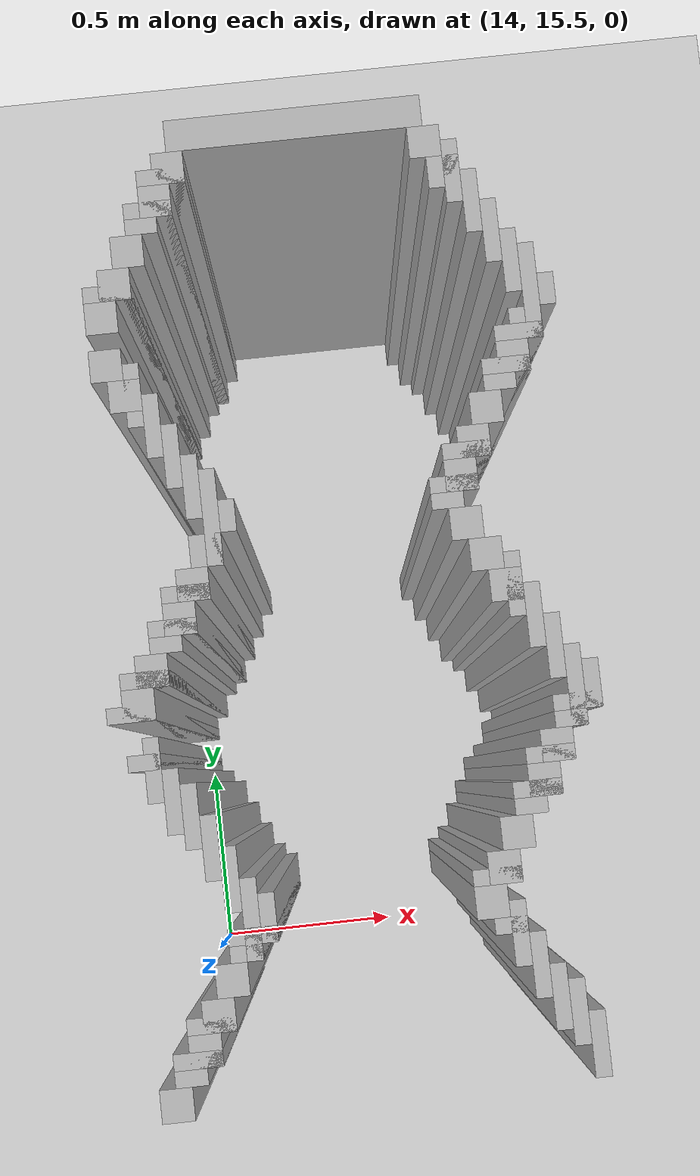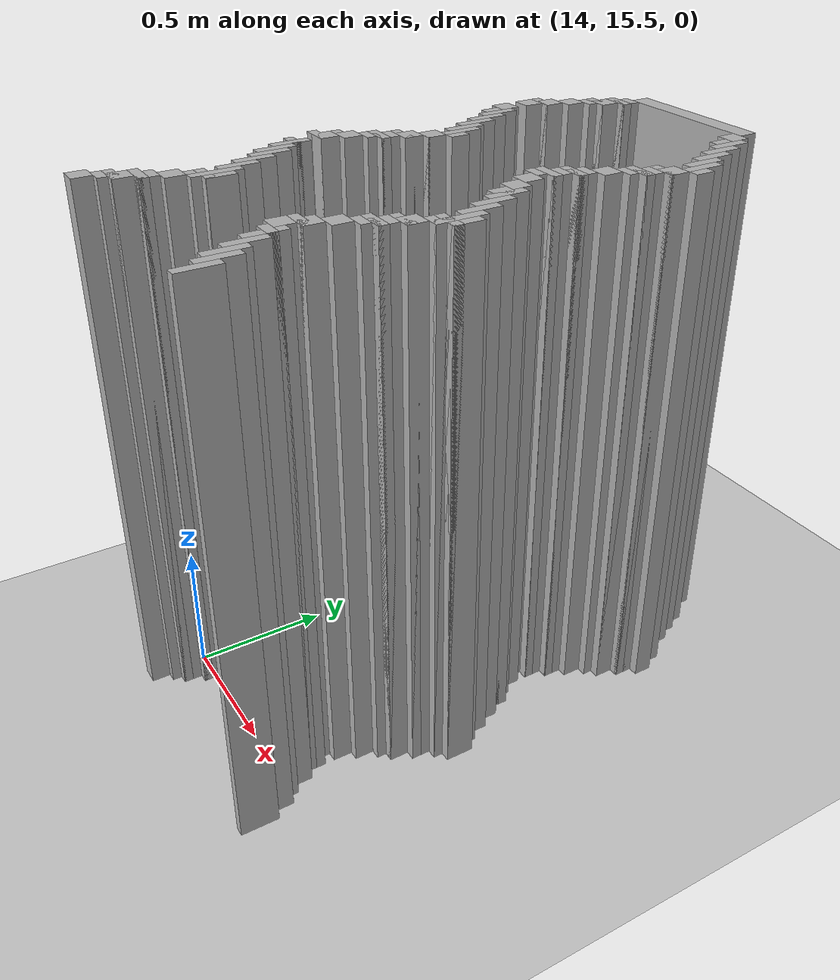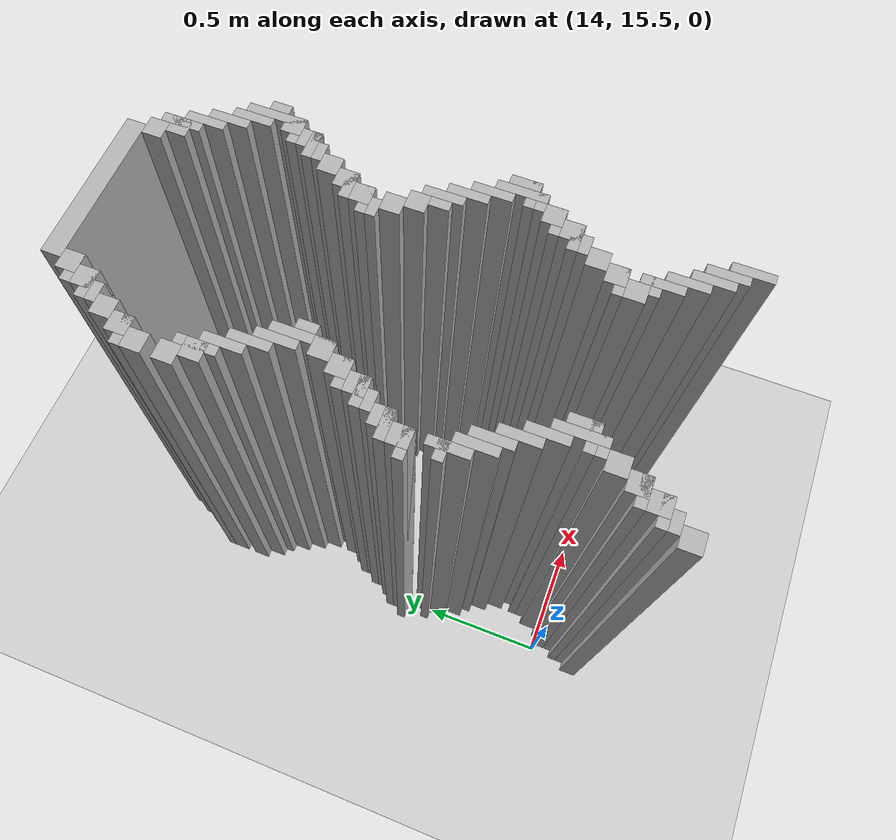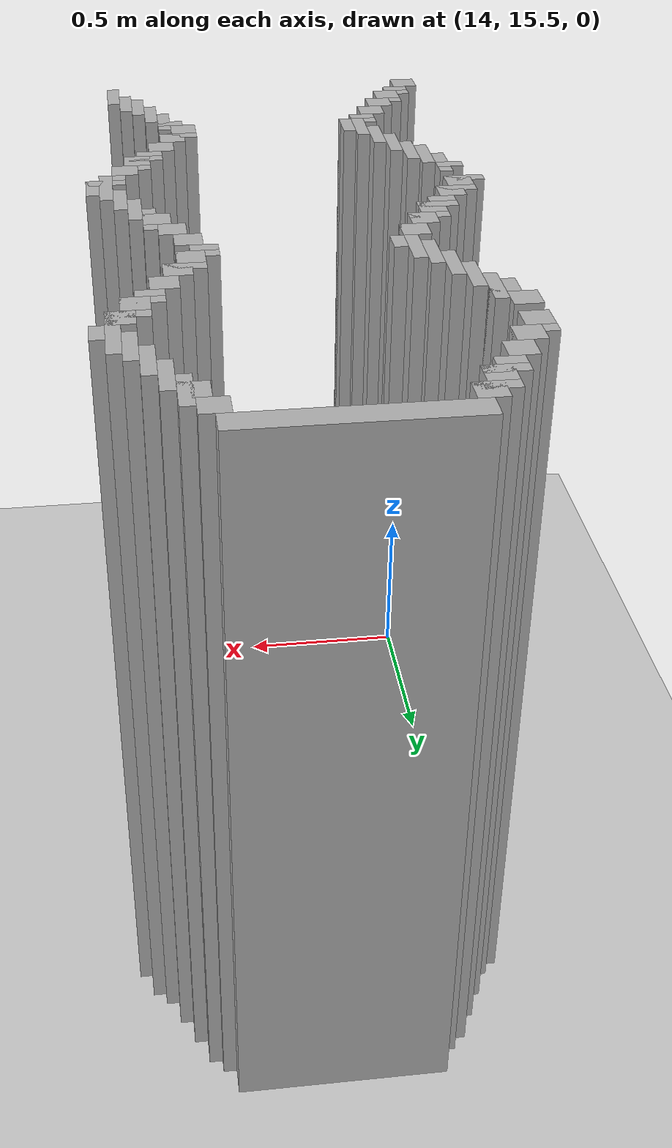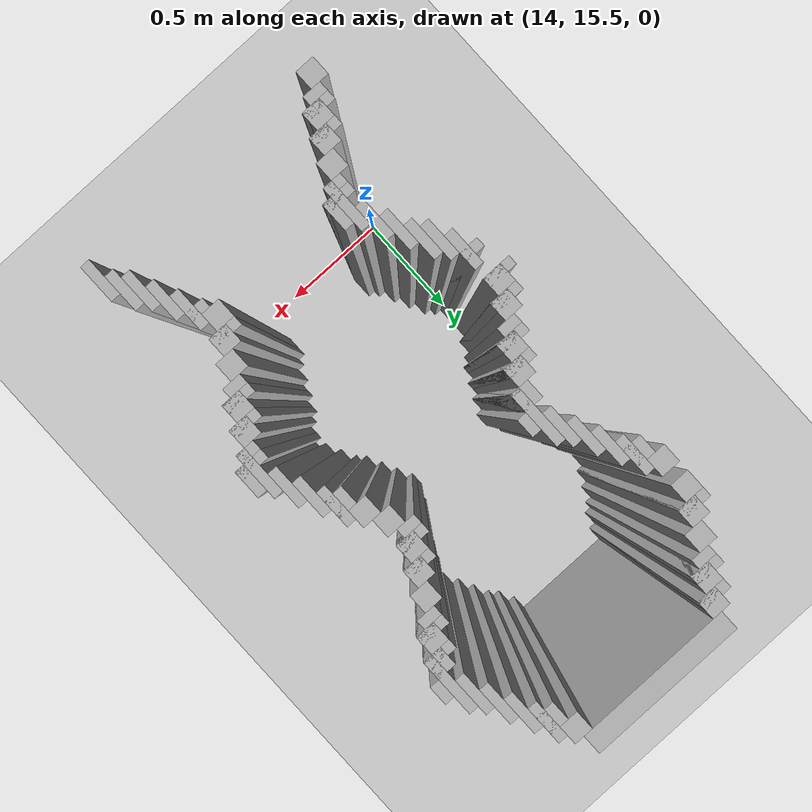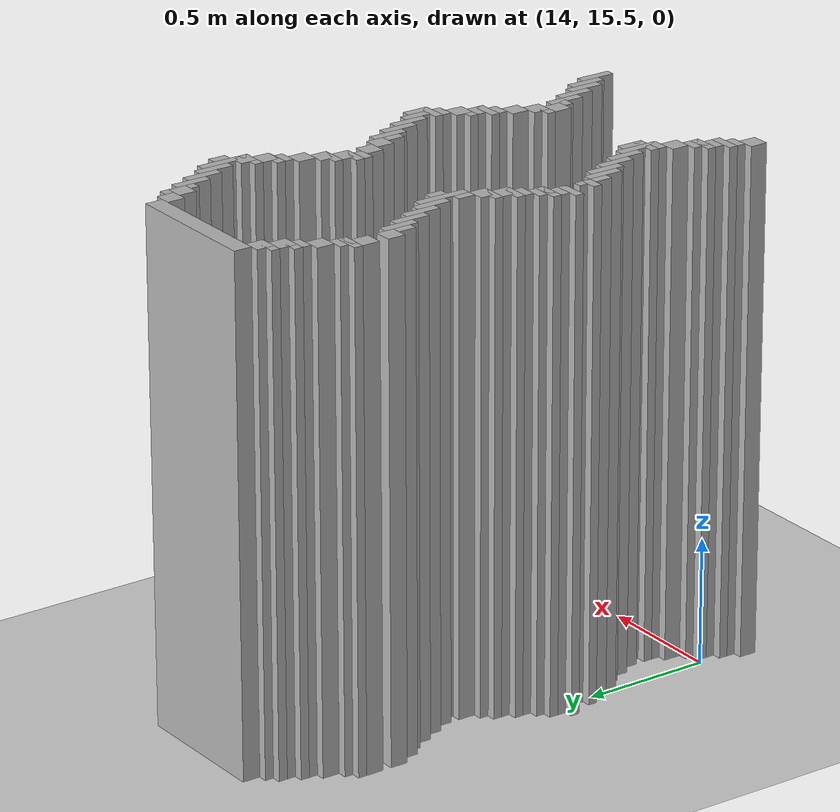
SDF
<sdf version="1.6">
 <world name="slam_world">
  <model name="ground_plane">
   <static>true</static>
   <link name="link">
    <collision name="collision">
     <geometry><plane><normal>0 0 1</normal><size>100 100</size></plane></geometry>
    </collision>
    <visual name="visual">
     <geometry><plane><normal>0 0 1</normal><size>100 100</size></plane></geometry>
     <material>
      <ambient>0.8 0.8 0.8 1</ambient>
      <diffuse>0.8 0.8 0.8 1</diffuse>
      <specular>0.8 0.8 0.8 1</specular>
     </material>
    </visual>
   </link>
  </model>
  <model name="wall_10">
   <static>true</static>
   <pose>14.443155452436194 17.366589327146173 1.0 0 0 0</pose>
   <link name="link">
    <collision name="collision">
     <geometry><box><size>0.5568445475638051 0.06960556844547564 2.0</size></box></geometry>
    </collision>
    <visual name="visual">
     <geometry><box><size>0.5568445475638051 0.06960556844547564 2.0</size></box></geometry>
     <material><ambient>0.5 0.5 0.5 1</ambient><diffuse>0.7 0.7 0.7 1</diffuse></material>
    </visual>
   </link>
  </model>
  <model name="wall_29">
   <static>true</static>
   <pose>14.164733178654291 17.296983758700694 1.0 0 0 0</pose>
   <link name="link">
    <collision name="collision">
     <geometry><box><size>0.06960556844547564 0.06960556844547564 2.0</size></box></geometry>
    </collision>
    <visual name="visual">
     <geometry><box><size>0.06960556844547564 0.06960556844547564 2.0</size></box></geometry>
     <material><ambient>0.5 0.5 0.5 1</ambient><diffuse>0.7 0.7 0.7 1</diffuse></material>
    </visual>
   </link>
  </model>
  <model name="wall_30">
   <static>true</static>
   <pose>14.721577726218097 17.296983758700694 1.0 0 0 0</pose>
   <link name="link">
    <collision name="collision">
     <geometry><box><size>0.06960556844547564 0.06960556844547564 2.0</size></box></geometry>
    </collision>
    <visual name="visual">
     <geometry><box><size>0.06960556844547564 0.06960556844547564 2.0</size></box></geometry>
     <material><ambient>0.5 0.5 0.5 1</ambient><diffuse>0.7 0.7 0.7 1</diffuse></material>
    </visual>
   </link>
  </model>
  <model name="wall_49">
   <static>true</static>
   <pose>14.147331786542923 17.279582366589327 1.0 0 0 0</pose>
   <link name="link">
    <collision name="collision">
     <geometry><box><size>0.10440835266821345 0.03480278422273782 2.0</size></box></geometry>
    </collision>
    <visual name="visual">
     <geometry><box><size>0.10440835266821345 0.03480278422273782 2.0</size></box></geometry>
     <material><ambient>0.5 0.5 0.5 1</ambient><diffuse>0.7 0.7 0.7 1</diffuse></material>
    </visual>
   </link>
  </model>
  <model name="wall_50">
   <static>true</static>
   <pose>14.773781902552203 17.22737819025522 1.0 0 0 0</pose>
   <link name="link">
    <collision name="collision">
     <geometry><box><size>0.03480278422273782 0.13921113689095127 2.0</size></box></geometry>
    </collision>
    <visual name="visual">
     <geometry><box><size>0.03480278422273782 0.13921113689095127 2.0</size></box></geometry>
     <material><ambient>0.5 0.5 0.5 1</ambient><diffuse>0.7 0.7 0.7 1</diffuse></material>
    </visual>
   </link>
  </model>
  <model name="wall_69">
   <static>true</static>
   <pose>14.129930394431554 17.22737819025522 1.0 0 0 0</pose>
   <link name="link">
    <collision name="collision">
     <geometry><box><size>0.06960556844547564 0.06960556844547564 2.0</size></box></geometry>
    </collision>
    <visual name="visual">
     <geometry><box><size>0.06960556844547564 0.06960556844547564 2.0</size></box></geometry>
     <material><ambient>0.5 0.5 0.5 1</ambient><diffuse>0.7 0.7 0.7 1</diffuse></material>
    </visual>
   </link>
  </model>
  <model name="wall_70">
   <static>true</static>
   <pose>14.756380510440835 17.22737819025522 1.0 0 0 0</pose>
   <link name="link">
    <collision name="collision">
     <geometry><box><size>0.06960556844547564 0.06960556844547564 2.0</size></box></geometry>
    </collision>
    <visual name="visual">
     <geometry><box><size>0.06960556844547564 0.06960556844547564 2.0</size></box></geometry>
     <material><ambient>0.5 0.5 0.5 1</ambient><diffuse>0.7 0.7 0.7 1</diffuse></material>
    </visual>
   </link>
  </model>
  <model name="wall_89">
   <static>true</static>
   <pose>14.112529002320185 17.209976798143853 1.0 0 0 0</pose>
   <link name="link">
    <collision name="collision">
     <geometry><box><size>0.10440835266821345 0.03480278422273782 2.0</size></box></geometry>
    </collision>
    <visual name="visual">
     <geometry><box><size>0.10440835266821345 0.03480278422273782 2.0</size></box></geometry>
     <material><ambient>0.5 0.5 0.5 1</ambient><diffuse>0.7 0.7 0.7 1</diffuse></material>
    </visual>
   </link>
  </model>
  <model name="wall_90">
   <static>true</static>
   <pose>14.80858468677494 17.157772621809745 1.0 0 0 0</pose>
   <link name="link">
    <collision name="collision">
     <geometry><box><size>0.03480278422273782 0.13921113689095127 2.0</size></box></geometry>
    </collision>
    <visual name="visual">
     <geometry><box><size>0.03480278422273782 0.13921113689095127 2.0</size></box></geometry>
     <material><ambient>0.5 0.5 0.5 1</ambient><diffuse>0.7 0.7 0.7 1</diffuse></material>
    </visual>
   </link>
  </model>
  <model name="wall_100">
   <static>true</static>
   <pose>14.095127610208817 17.17517401392111 1.0 0 0 0</pose>
   <link name="link">
    <collision name="collision">
     <geometry><box><size>0.06960556844547564 0.03480278422273782 2.0</size></box></geometry>
    </collision>
    <visual name="visual">
     <geometry><box><size>0.06960556844547564 0.03480278422273782 2.0</size></box></geometry>
     <material><ambient>0.5 0.5 0.5 1</ambient><diffuse>0.7 0.7 0.7 1</diffuse></material>
    </visual>
   </link>
  </model>
  <model name="wall_119">
   <static>true</static>
   <pose>14.06032482598608 17.122969837587007 1.0 0 0 0</pose>
   <link name="link">
    <collision name="collision">
     <geometry><box><size>0.06960556844547564 0.06960556844547564 2.0</size></box></geometry>
    </collision>
    <visual name="visual">
     <geometry><box><size>0.06960556844547564 0.06960556844547564 2.0</size></box></geometry>
     <material><ambient>0.5 0.5 0.5 1</ambient><diffuse>0.7 0.7 0.7 1</diffuse></material>
    </visual>
   </link>
  </model>
  <model name="wall_120">
   <static>true</static>
   <pose>14.84338747099768 17.08816705336427 1.0 0 0 0</pose>
   <link name="link">
    <collision name="collision">
     <geometry><box><size>0.03480278422273782 0.13921113689095127 2.0</size></box></geometry>
    </collision>
    <visual name="visual">
     <geometry><box><size>0.03480278422273782 0.13921113689095127 2.0</size></box></geometry>
     <material><ambient>0.5 0.5 0.5 1</ambient><diffuse>0.7 0.7 0.7 1</diffuse></material>
    </visual>
   </link>
  </model>
  <model name="wall_139">
   <static>true</static>
   <pose>14.02552204176334 17.053364269141532 1.0 0 0 0</pose>
   <link name="link">
    <collision name="collision">
     <geometry><box><size>0.06960556844547564 0.06960556844547564 2.0</size></box></geometry>
    </collision>
    <visual name="visual">
     <geometry><box><size>0.06960556844547564 0.06960556844547564 2.0</size></box></geometry>
     <material><ambient>0.5 0.5 0.5 1</ambient><diffuse>0.7 0.7 0.7 1</diffuse></material>
    </visual>
   </link>
  </model>
  <model name="wall_140">
   <static>true</static>
   <pose>14.878190255220417 17.01856148491879 1.0 0 0 0</pose>
   <link name="link">
    <collision name="collision">
     <geometry><box><size>0.03480278422273782 0.13921113689095127 2.0</size></box></geometry>
    </collision>
    <visual name="visual">
     <geometry><box><size>0.03480278422273782 0.13921113689095127 2.0</size></box></geometry>
     <material><ambient>0.5 0.5 0.5 1</ambient><diffuse>0.7 0.7 0.7 1</diffuse></material>
    </visual>
   </link>
  </model>
  <model name="wall_159">
   <static>true</static>
   <pose>14.008120649651971 17.035962877030162 1.0 0 0 0</pose>
   <link name="link">
    <collision name="collision">
     <geometry><box><size>0.10440835266821345 0.03480278422273782 2.0</size></box></geometry>
    </collision>
    <visual name="visual">
     <geometry><box><size>0.10440835266821345 0.03480278422273782 2.0</size></box></geometry>
     <material><ambient>0.5 0.5 0.5 1</ambient><diffuse>0.7 0.7 0.7 1</diffuse></material>
    </visual>
   </link>
  </model>
  <model name="wall_160">
   <static>true</static>
   <pose>14.912993039443155 16.948955916473317 1.0 0 0 0</pose>
   <link name="link">
    <collision name="collision">
     <geometry><box><size>0.03480278422273782 0.2088167053364269 2.0</size></box></geometry>
    </collision>
    <visual name="visual">
     <geometry><box><size>0.03480278422273782 0.2088167053364269 2.0</size></box></geometry>
     <material><ambient>0.5 0.5 0.5 1</ambient><diffuse>0.7 0.7 0.7 1</diffuse></material>
    </visual>
   </link>
  </model>
  <model name="wall_170">
   <static>true</static>
   <pose>13.990719257540603 16.983758700696054 1.0 0 0 0</pose>
   <link name="link">
    <collision name="collision">
     <geometry><box><size>0.06960556844547564 0.06960556844547564 2.0</size></box></geometry>
    </collision>
    <visual name="visual">
     <geometry><box><size>0.06960556844547564 0.06960556844547564 2.0</size></box></geometry>
     <material><ambient>0.5 0.5 0.5 1</ambient><diffuse>0.7 0.7 0.7 1</diffuse></material>
    </visual>
   </link>
  </model>
  <model name="wall_181">
   <static>true</static>
   <pose>14.947795823665892 16.948955916473317 1.0 0 0 0</pose>
   <link name="link">
    <collision name="collision">
     <geometry><box><size>0.03480278422273782 0.06960556844547564 2.0</size></box></geometry>
    </collision>
    <visual name="visual">
     <geometry><box><size>0.03480278422273782 0.06960556844547564 2.0</size></box></geometry>
     <material><ambient>0.5 0.5 0.5 1</ambient><diffuse>0.7 0.7 0.7 1</diffuse></material>
    </visual>
   </link>
  </model>
  <model name="wall_199">
   <static>true</static>
   <pose>13.990719257540603 16.87935034802784 1.0 0 0 0</pose>
   <link name="link">
    <collision name="collision">
     <geometry><box><size>0.06960556844547564 0.06960556844547564 2.0</size></box></geometry>
    </collision>
    <visual name="visual">
     <geometry><box><size>0.06960556844547564 0.06960556844547564 2.0</size></box></geometry>
     <material><ambient>0.5 0.5 0.5 1</ambient><diffuse>0.7 0.7 0.7 1</diffuse></material>
    </visual>
   </link>
  </model>
  <model name="wall_200">
   <static>true</static>
   <pose>14.895591647331786 16.87935034802784 1.0 0 0 0</pose>
   <link name="link">
    <collision name="collision">
     <geometry><box><size>0.06960556844547564 0.06960556844547564 2.0</size></box></geometry>
    </collision>
    <visual name="visual">
     <geometry><box><size>0.06960556844547564 0.06960556844547564 2.0</size></box></geometry>
     <material><ambient>0.5 0.5 0.5 1</ambient><diffuse>0.7 0.7 0.7 1</diffuse></material>
    </visual>
   </link>
  </model>
  <model name="wall_208">
   <static>true</static>
   <pose>14.042923433874709 16.809744779582367 1.0 0 0 0</pose>
   <link name="link">
    <collision name="collision">
     <geometry><box><size>0.03480278422273782 0.13921113689095127 2.0</size></box></geometry>
    </collision>
    <visual name="visual">
     <geometry><box><size>0.03480278422273782 0.13921113689095127 2.0</size></box></geometry>
     <material><ambient>0.5 0.5 0.5 1</ambient><diffuse>0.7 0.7 0.7 1</diffuse></material>
    </visual>
   </link>
  </model>
  <model name="wall_209">
   <static>true</static>
   <pose>14.878190255220417 16.86194895591647 1.0 0 0 0</pose>
   <link name="link">
    <collision name="collision">
     <geometry><box><size>0.10440835266821345 0.03480278422273782 2.0</size></box></geometry>
    </collision>
    <visual name="visual">
     <geometry><box><size>0.10440835266821345 0.03480278422273782 2.0</size></box></geometry>
     <material><ambient>0.5 0.5 0.5 1</ambient><diffuse>0.7 0.7 0.7 1</diffuse></material>
    </visual>
   </link>
  </model>
  <model name="wall_217">
   <static>true</static>
   <pose>14.02552204176334 16.809744779582367 1.0 0 0 0</pose>
   <link name="link">
    <collision name="collision">
     <geometry><box><size>0.06960556844547564 0.06960556844547564 2.0</size></box></geometry>
    </collision>
    <visual name="visual">
     <geometry><box><size>0.06960556844547564 0.06960556844547564 2.0</size></box></geometry>
     <material><ambient>0.5 0.5 0.5 1</ambient><diffuse>0.7 0.7 0.7 1</diffuse></material>
    </visual>
   </link>
  </model>
  <model name="wall_218">
   <static>true</static>
   <pose>14.860788863109049 16.809744779582367 1.0 0 0 0</pose>
   <link name="link">
    <collision name="collision">
     <geometry><box><size>0.06960556844547564 0.06960556844547564 2.0</size></box></geometry>
    </collision>
    <visual name="visual">
     <geometry><box><size>0.06960556844547564 0.06960556844547564 2.0</size></box></geometry>
     <material><ambient>0.5 0.5 0.5 1</ambient><diffuse>0.7 0.7 0.7 1</diffuse></material>
    </visual>
   </link>
  </model>
  <model name="wall_226">
   <static>true</static>
   <pose>14.077726218097448 16.74013921113689 1.0 0 0 0</pose>
   <link name="link">
    <collision name="collision">
     <geometry><box><size>0.03480278422273782 0.13921113689095127 2.0</size></box></geometry>
    </collision>
    <visual name="visual">
     <geometry><box><size>0.03480278422273782 0.13921113689095127 2.0</size></box></geometry>
     <material><ambient>0.5 0.5 0.5 1</ambient><diffuse>0.7 0.7 0.7 1</diffuse></material>
    </visual>
   </link>
  </model>
  <model name="wall_227">
   <static>true</static>
   <pose>14.84338747099768 16.792343387470996 1.0 0 0 0</pose>
   <link name="link">
    <collision name="collision">
     <geometry><box><size>0.10440835266821345 0.03480278422273782 2.0</size></box></geometry>
    </collision>
    <visual name="visual">
     <geometry><box><size>0.10440835266821345 0.03480278422273782 2.0</size></box></geometry>
     <material><ambient>0.5 0.5 0.5 1</ambient><diffuse>0.7 0.7 0.7 1</diffuse></material>
    </visual>
   </link>
  </model>
  <model name="wall_231">
   <static>true</static>
   <pose>14.825986078886311 16.75754060324826 1.0 0 0 0</pose>
   <link name="link">
    <collision name="collision">
     <geometry><box><size>0.06960556844547564 0.03480278422273782 2.0</size></box></geometry>
    </collision>
    <visual name="visual">
     <geometry><box><size>0.06960556844547564 0.03480278422273782 2.0</size></box></geometry>
     <material><ambient>0.5 0.5 0.5 1</ambient><diffuse>0.7 0.7 0.7 1</diffuse></material>
    </visual>
   </link>
  </model>
  <model name="wall_239">
   <static>true</static>
   <pose>14.112529002320185 16.670533642691414 1.0 0 0 0</pose>
   <link name="link">
    <collision name="collision">
     <geometry><box><size>0.03480278422273782 0.13921113689095127 2.0</size></box></geometry>
    </collision>
    <visual name="visual">
     <geometry><box><size>0.03480278422273782 0.13921113689095127 2.0</size></box></geometry>
     <material><ambient>0.5 0.5 0.5 1</ambient><diffuse>0.7 0.7 0.7 1</diffuse></material>
    </visual>
   </link>
  </model>
  <model name="wall_240">
   <static>true</static>
   <pose>14.791183294663572 16.70533642691415 1.0 0 0 0</pose>
   <link name="link">
    <collision name="collision">
     <geometry><box><size>0.06960556844547564 0.06960556844547564 2.0</size></box></geometry>
    </collision>
    <visual name="visual">
     <geometry><box><size>0.06960556844547564 0.06960556844547564 2.0</size></box></geometry>
     <material><ambient>0.5 0.5 0.5 1</ambient><diffuse>0.7 0.7 0.7 1</diffuse></material>
    </visual>
   </link>
  </model>
  <model name="wall_248">
   <static>true</static>
   <pose>14.147331786542923 16.60092807424594 1.0 0 0 0</pose>
   <link name="link">
    <collision name="collision">
     <geometry><box><size>0.03480278422273782 0.13921113689095127 2.0</size></box></geometry>
    </collision>
    <visual name="visual">
     <geometry><box><size>0.03480278422273782 0.13921113689095127 2.0</size></box></geometry>
     <material><ambient>0.5 0.5 0.5 1</ambient><diffuse>0.7 0.7 0.7 1</diffuse></material>
    </visual>
   </link>
  </model>
  <model name="wall_249">
   <static>true</static>
   <pose>14.756380510440835 16.635730858468676 1.0 0 0 0</pose>
   <link name="link">
    <collision name="collision">
     <geometry><box><size>0.06960556844547564 0.06960556844547564 2.0</size></box></geometry>
    </collision>
    <visual name="visual">
     <geometry><box><size>0.06960556844547564 0.06960556844547564 2.0</size></box></geometry>
     <material><ambient>0.5 0.5 0.5 1</ambient><diffuse>0.7 0.7 0.7 1</diffuse></material>
    </visual>
   </link>
  </model>
  <model name="wall_257">
   <static>true</static>
   <pose>14.18213457076566 16.531322505800464 1.0 0 0 0</pose>
   <link name="link">
    <collision name="collision">
     <geometry><box><size>0.03480278422273782 0.2088167053364269 2.0</size></box></geometry>
    </collision>
    <visual name="visual">
     <geometry><box><size>0.03480278422273782 0.2088167053364269 2.0</size></box></geometry>
     <material><ambient>0.5 0.5 0.5 1</ambient><diffuse>0.7 0.7 0.7 1</diffuse></material>
    </visual>
   </link>
  </model>
  <model name="wall_258">
   <static>true</static>
   <pose>14.738979118329466 16.61832946635731 1.0 0 0 0</pose>
   <link name="link">
    <collision name="collision">
     <geometry><box><size>0.10440835266821345 0.03480278422273782 2.0</size></box></geometry>
    </collision>
    <visual name="visual">
     <geometry><box><size>0.10440835266821345 0.03480278422273782 2.0</size></box></geometry>
     <material><ambient>0.5 0.5 0.5 1</ambient><diffuse>0.7 0.7 0.7 1</diffuse></material>
    </visual>
   </link>
  </model>
  <model name="wall_262">
   <static>true</static>
   <pose>14.721577726218097 16.5661252900232 1.0 0 0 0</pose>
   <link name="link">
    <collision name="collision">
     <geometry><box><size>0.06960556844547564 0.06960556844547564 2.0</size></box></geometry>
    </collision>
    <visual name="visual">
     <geometry><box><size>0.06960556844547564 0.06960556844547564 2.0</size></box></geometry>
     <material><ambient>0.5 0.5 0.5 1</ambient><diffuse>0.7 0.7 0.7 1</diffuse></material>
    </visual>
   </link>
  </model>
  <model name="wall_274">
   <static>true</static>
   <pose>14.2169373549884 16.531322505800464 1.0 0 0 0</pose>
   <link name="link">
    <collision name="collision">
     <geometry><box><size>0.03480278422273782 0.06960556844547564 2.0</size></box></geometry>
    </collision>
    <visual name="visual">
     <geometry><box><size>0.03480278422273782 0.06960556844547564 2.0</size></box></geometry>
     <material><ambient>0.5 0.5 0.5 1</ambient><diffuse>0.7 0.7 0.7 1</diffuse></material>
    </visual>
   </link>
  </model>
  <model name="wall_275">
   <static>true</static>
   <pose>14.704176334106728 16.54872389791183 1.0 0 0 0</pose>
   <link name="link">
    <collision name="collision">
     <geometry><box><size>0.10440835266821345 0.03480278422273782 2.0</size></box></geometry>
    </collision>
    <visual name="visual">
     <geometry><box><size>0.10440835266821345 0.03480278422273782 2.0</size></box></geometry>
     <material><ambient>0.5 0.5 0.5 1</ambient><diffuse>0.7 0.7 0.7 1</diffuse></material>
    </visual>
   </link>
  </model>
  <model name="wall_279">
   <static>true</static>
   <pose>14.68677494199536 16.513921113689094 1.0 0 0 0</pose>
   <link name="link">
    <collision name="collision">
     <geometry><box><size>0.06960556844547564 0.03480278422273782 2.0</size></box></geometry>
    </collision>
    <visual name="visual">
     <geometry><box><size>0.06960556844547564 0.03480278422273782 2.0</size></box></geometry>
     <material><ambient>0.5 0.5 0.5 1</ambient><diffuse>0.7 0.7 0.7 1</diffuse></material>
    </visual>
   </link>
  </model>
  <model name="wall_292">
   <static>true</static>
   <pose>14.164733178654291 16.46171693735499 1.0 0 0 0</pose>
   <link name="link">
    <collision name="collision">
     <geometry><box><size>0.06960556844547564 0.06960556844547564 2.0</size></box></geometry>
    </collision>
    <visual name="visual">
     <geometry><box><size>0.06960556844547564 0.06960556844547564 2.0</size></box></geometry>
     <material><ambient>0.5 0.5 0.5 1</ambient><diffuse>0.7 0.7 0.7 1</diffuse></material>
    </visual>
   </link>
  </model>
  <model name="wall_293">
   <static>true</static>
   <pose>14.721577726218097 16.46171693735499 1.0 0 0 0</pose>
   <link name="link">
    <collision name="collision">
     <geometry><box><size>0.06960556844547564 0.06960556844547564 2.0</size></box></geometry>
    </collision>
    <visual name="visual">
     <geometry><box><size>0.06960556844547564 0.06960556844547564 2.0</size></box></geometry>
     <material><ambient>0.5 0.5 0.5 1</ambient><diffuse>0.7 0.7 0.7 1</diffuse></material>
    </visual>
   </link>
  </model>
  <model name="wall_315">
   <static>true</static>
   <pose>14.129930394431554 16.39211136890951 1.0 0 0 0</pose>
   <link name="link">
    <collision name="collision">
     <geometry><box><size>0.06960556844547564 0.06960556844547564 2.0</size></box></geometry>
    </collision>
    <visual name="visual">
     <geometry><box><size>0.06960556844547564 0.06960556844547564 2.0</size></box></geometry>
     <material><ambient>0.5 0.5 0.5 1</ambient><diffuse>0.7 0.7 0.7 1</diffuse></material>
    </visual>
   </link>
  </model>
  <model name="wall_316">
   <static>true</static>
   <pose>14.756380510440835 16.39211136890951 1.0 0 0 0</pose>
   <link name="link">
    <collision name="collision">
     <geometry><box><size>0.06960556844547564 0.06960556844547564 2.0</size></box></geometry>
    </collision>
    <visual name="visual">
     <geometry><box><size>0.06960556844547564 0.06960556844547564 2.0</size></box></geometry>
     <material><ambient>0.5 0.5 0.5 1</ambient><diffuse>0.7 0.7 0.7 1</diffuse></material>
    </visual>
   </link>
  </model>
  <model name="wall_329">
   <static>true</static>
   <pose>14.112529002320185 16.374709976798144 1.0 0 0 0</pose>
   <link name="link">
    <collision name="collision">
     <geometry><box><size>0.10440835266821345 0.03480278422273782 2.0</size></box></geometry>
    </collision>
    <visual name="visual">
     <geometry><box><size>0.10440835266821345 0.03480278422273782 2.0</size></box></geometry>
     <material><ambient>0.5 0.5 0.5 1</ambient><diffuse>0.7 0.7 0.7 1</diffuse></material>
    </visual>
   </link>
  </model>
  <model name="wall_330">
   <static>true</static>
   <pose>14.80858468677494 16.322505800464036 1.0 0 0 0</pose>
   <link name="link">
    <collision name="collision">
     <geometry><box><size>0.03480278422273782 0.13921113689095127 2.0</size></box></geometry>
    </collision>
    <visual name="visual">
     <geometry><box><size>0.03480278422273782 0.13921113689095127 2.0</size></box></geometry>
     <material><ambient>0.5 0.5 0.5 1</ambient><diffuse>0.7 0.7 0.7 1</diffuse></material>
    </visual>
   </link>
  </model>
  <model name="wall_343">
   <static>true</static>
   <pose>14.095127610208817 16.322505800464036 1.0 0 0 0</pose>
   <link name="link">
    <collision name="collision">
     <geometry><box><size>0.06960556844547564 0.06960556844547564 2.0</size></box></geometry>
    </collision>
    <visual name="visual">
     <geometry><box><size>0.06960556844547564 0.06960556844547564 2.0</size></box></geometry>
     <material><ambient>0.5 0.5 0.5 1</ambient><diffuse>0.7 0.7 0.7 1</diffuse></material>
    </visual>
   </link>
  </model>
  <model name="wall_344">
   <static>true</static>
   <pose>14.791183294663572 16.322505800464036 1.0 0 0 0</pose>
   <link name="link">
    <collision name="collision">
     <geometry><box><size>0.06960556844547564 0.06960556844547564 2.0</size></box></geometry>
    </collision>
    <visual name="visual">
     <geometry><box><size>0.06960556844547564 0.06960556844547564 2.0</size></box></geometry>
     <material><ambient>0.5 0.5 0.5 1</ambient><diffuse>0.7 0.7 0.7 1</diffuse></material>
    </visual>
   </link>
  </model>
  <model name="wall_357">
   <static>true</static>
   <pose>14.077726218097448 16.30510440835267 1.0 0 0 0</pose>
   <link name="link">
    <collision name="collision">
     <geometry><box><size>0.10440835266821345 0.03480278422273782 2.0</size></box></geometry>
    </collision>
    <visual name="visual">
     <geometry><box><size>0.10440835266821345 0.03480278422273782 2.0</size></box></geometry>
     <material><ambient>0.5 0.5 0.5 1</ambient><diffuse>0.7 0.7 0.7 1</diffuse></material>
    </visual>
   </link>
  </model>
  <model name="wall_358">
   <static>true</static>
   <pose>14.84338747099768 16.25290023201856 1.0 0 0 0</pose>
   <link name="link">
    <collision name="collision">
     <geometry><box><size>0.03480278422273782 0.13921113689095127 2.0</size></box></geometry>
    </collision>
    <visual name="visual">
     <geometry><box><size>0.03480278422273782 0.13921113689095127 2.0</size></box></geometry>
     <material><ambient>0.5 0.5 0.5 1</ambient><diffuse>0.7 0.7 0.7 1</diffuse></material>
    </visual>
   </link>
  </model>
  <model name="wall_366">
   <static>true</static>
   <pose>14.06032482598608 16.270301624129928 1.0 0 0 0</pose>
   <link name="link">
    <collision name="collision">
     <geometry><box><size>0.06960556844547564 0.03480278422273782 2.0</size></box></geometry>
    </collision>
    <visual name="visual">
     <geometry><box><size>0.06960556844547564 0.03480278422273782 2.0</size></box></geometry>
     <material><ambient>0.5 0.5 0.5 1</ambient><diffuse>0.7 0.7 0.7 1</diffuse></material>
    </visual>
   </link>
  </model>
  <model name="wall_379">
   <static>true</static>
   <pose>14.02552204176334 16.218097447795824 1.0 0 0 0</pose>
   <link name="link">
    <collision name="collision">
     <geometry><box><size>0.06960556844547564 0.06960556844547564 2.0</size></box></geometry>
    </collision>
    <visual name="visual">
     <geometry><box><size>0.06960556844547564 0.06960556844547564 2.0</size></box></geometry>
     <material><ambient>0.5 0.5 0.5 1</ambient><diffuse>0.7 0.7 0.7 1</diffuse></material>
    </visual>
   </link>
  </model>
  <model name="wall_380">
   <static>true</static>
   <pose>14.878190255220417 16.183294663573086 1.0 0 0 0</pose>
   <link name="link">
    <collision name="collision">
     <geometry><box><size>0.03480278422273782 0.13921113689095127 2.0</size></box></geometry>
    </collision>
    <visual name="visual">
     <geometry><box><size>0.03480278422273782 0.13921113689095127 2.0</size></box></geometry>
     <material><ambient>0.5 0.5 0.5 1</ambient><diffuse>0.7 0.7 0.7 1</diffuse></material>
    </visual>
   </link>
  </model>
  <model name="wall_388">
   <static>true</static>
   <pose>14.008120649651971 16.200696055684453 1.0 0 0 0</pose>
   <link name="link">
    <collision name="collision">
     <geometry><box><size>0.10440835266821345 0.03480278422273782 2.0</size></box></geometry>
    </collision>
    <visual name="visual">
     <geometry><box><size>0.10440835266821345 0.03480278422273782 2.0</size></box></geometry>
     <material><ambient>0.5 0.5 0.5 1</ambient><diffuse>0.7 0.7 0.7 1</diffuse></material>
    </visual>
   </link>
  </model>
  <model name="wall_401">
   <static>true</static>
   <pose>13.990719257540603 16.14849187935035 1.0 0 0 0</pose>
   <link name="link">
    <collision name="collision">
     <geometry><box><size>0.06960556844547564 0.06960556844547564 2.0</size></box></geometry>
    </collision>
    <visual name="visual">
     <geometry><box><size>0.06960556844547564 0.06960556844547564 2.0</size></box></geometry>
     <material><ambient>0.5 0.5 0.5 1</ambient><diffuse>0.7 0.7 0.7 1</diffuse></material>
    </visual>
   </link>
  </model>
  <model name="wall_402">
   <static>true</static>
   <pose>14.912993039443155 16.09628770301624 1.0 0 0 0</pose>
   <link name="link">
    <collision name="collision">
     <geometry><box><size>0.03480278422273782 0.17401392111368907 2.0</size></box></geometry>
    </collision>
    <visual name="visual">
     <geometry><box><size>0.03480278422273782 0.17401392111368907 2.0</size></box></geometry>
     <material><ambient>0.5 0.5 0.5 1</ambient><diffuse>0.7 0.7 0.7 1</diffuse></material>
    </visual>
   </link>
  </model>
  <model name="wall_414">
   <static>true</static>
   <pose>13.973317865429234 16.13109048723898 1.0 0 0 0</pose>
   <link name="link">
    <collision name="collision">
     <geometry><box><size>0.10440835266821345 0.03480278422273782 2.0</size></box></geometry>
    </collision>
    <visual name="visual">
     <geometry><box><size>0.10440835266821345 0.03480278422273782 2.0</size></box></geometry>
     <material><ambient>0.5 0.5 0.5 1</ambient><diffuse>0.7 0.7 0.7 1</diffuse></material>
    </visual>
   </link>
  </model>
  <model name="wall_415">
   <static>true</static>
   <pose>14.947795823665892 16.09628770301624 1.0 0 0 0</pose>
   <link name="link">
    <collision name="collision">
     <geometry><box><size>0.03480278422273782 0.10440835266821345 2.0</size></box></geometry>
    </collision>
    <visual name="visual">
     <geometry><box><size>0.03480278422273782 0.10440835266821345 2.0</size></box></geometry>
     <material><ambient>0.5 0.5 0.5 1</ambient><diffuse>0.7 0.7 0.7 1</diffuse></material>
    </visual>
   </link>
  </model>
  <model name="wall_440">
   <static>true</static>
   <pose>14.008120649651971 16.009280742459396 1.0 0 0 0</pose>
   <link name="link">
    <collision name="collision">
     <geometry><box><size>0.03480278422273782 0.13921113689095127 2.0</size></box></geometry>
    </collision>
    <visual name="visual">
     <geometry><box><size>0.03480278422273782 0.13921113689095127 2.0</size></box></geometry>
     <material><ambient>0.5 0.5 0.5 1</ambient><diffuse>0.7 0.7 0.7 1</diffuse></material>
    </visual>
   </link>
  </model>
  <model name="wall_441">
   <static>true</static>
   <pose>14.912993039443155 16.061484918793504 1.0 0 0 0</pose>
   <link name="link">
    <collision name="collision">
     <geometry><box><size>0.10440835266821345 0.03480278422273782 2.0</size></box></geometry>
    </collision>
    <visual name="visual">
     <geometry><box><size>0.10440835266821345 0.03480278422273782 2.0</size></box></geometry>
     <material><ambient>0.5 0.5 0.5 1</ambient><diffuse>0.7 0.7 0.7 1</diffuse></material>
    </visual>
   </link>
  </model>
  <model name="wall_454">
   <static>true</static>
   <pose>13.990719257540603 16.026682134570766 1.0 0 0 0</pose>
   <link name="link">
    <collision name="collision">
     <geometry><box><size>0.06960556844547564 0.03480278422273782 2.0</size></box></geometry>
    </collision>
    <visual name="visual">
     <geometry><box><size>0.06960556844547564 0.03480278422273782 2.0</size></box></geometry>
     <material><ambient>0.5 0.5 0.5 1</ambient><diffuse>0.7 0.7 0.7 1</diffuse></material>
    </visual>
   </link>
  </model>
  <model name="wall_455">
   <static>true</static>
   <pose>14.895591647331786 16.026682134570766 1.0 0 0 0</pose>
   <link name="link">
    <collision name="collision">
     <geometry><box><size>0.06960556844547564 0.03480278422273782 2.0</size></box></geometry>
    </collision>
    <visual name="visual">
     <geometry><box><size>0.06960556844547564 0.03480278422273782 2.0</size></box></geometry>
     <material><ambient>0.5 0.5 0.5 1</ambient><diffuse>0.7 0.7 0.7 1</diffuse></material>
    </visual>
   </link>
  </model>
  <model name="wall_468">
   <static>true</static>
   <pose>14.042923433874709 15.93967517401392 1.0 0 0 0</pose>
   <link name="link">
    <collision name="collision">
     <geometry><box><size>0.03480278422273782 0.13921113689095127 2.0</size></box></geometry>
    </collision>
    <visual name="visual">
     <geometry><box><size>0.03480278422273782 0.13921113689095127 2.0</size></box></geometry>
     <material><ambient>0.5 0.5 0.5 1</ambient><diffuse>0.7 0.7 0.7 1</diffuse></material>
    </visual>
   </link>
  </model>
  <model name="wall_469">
   <static>true</static>
   <pose>14.860788863109049 15.974477958236658 1.0 0 0 0</pose>
   <link name="link">
    <collision name="collision">
     <geometry><box><size>0.06960556844547564 0.06960556844547564 2.0</size></box></geometry>
    </collision>
    <visual name="visual">
     <geometry><box><size>0.06960556844547564 0.06960556844547564 2.0</size></box></geometry>
     <material><ambient>0.5 0.5 0.5 1</ambient><diffuse>0.7 0.7 0.7 1</diffuse></material>
    </visual>
   </link>
  </model>
  <model name="wall_482">
   <static>true</static>
   <pose>14.077726218097448 15.904872389791183 1.0 0 0 0</pose>
   <link name="link">
    <collision name="collision">
     <geometry><box><size>0.03480278422273782 0.13921113689095127 2.0</size></box></geometry>
    </collision>
    <visual name="visual">
     <geometry><box><size>0.03480278422273782 0.13921113689095127 2.0</size></box></geometry>
     <material><ambient>0.5 0.5 0.5 1</ambient><diffuse>0.7 0.7 0.7 1</diffuse></material>
    </visual>
   </link>
  </model>
  <model name="wall_483">
   <static>true</static>
   <pose>14.84338747099768 15.95707656612529 1.0 0 0 0</pose>
   <link name="link">
    <collision name="collision">
     <geometry><box><size>0.10440835266821345 0.03480278422273782 2.0</size></box></geometry>
    </collision>
    <visual name="visual">
     <geometry><box><size>0.10440835266821345 0.03480278422273782 2.0</size></box></geometry>
     <material><ambient>0.5 0.5 0.5 1</ambient><diffuse>0.7 0.7 0.7 1</diffuse></material>
    </visual>
   </link>
  </model>
  <model name="wall_493">
   <static>true</static>
   <pose>14.825986078886311 15.904872389791183 1.0 0 0 0</pose>
   <link name="link">
    <collision name="collision">
     <geometry><box><size>0.06960556844547564 0.06960556844547564 2.0</size></box></geometry>
    </collision>
    <visual name="visual">
     <geometry><box><size>0.06960556844547564 0.06960556844547564 2.0</size></box></geometry>
     <material><ambient>0.5 0.5 0.5 1</ambient><diffuse>0.7 0.7 0.7 1</diffuse></material>
    </visual>
   </link>
  </model>
  <model name="wall_506">
   <static>true</static>
   <pose>14.112529002320185 15.835266821345707 1.0 0 0 0</pose>
   <link name="link">
    <collision name="collision">
     <geometry><box><size>0.03480278422273782 0.13921113689095127 2.0</size></box></geometry>
    </collision>
    <visual name="visual">
     <geometry><box><size>0.03480278422273782 0.13921113689095127 2.0</size></box></geometry>
     <material><ambient>0.5 0.5 0.5 1</ambient><diffuse>0.7 0.7 0.7 1</diffuse></material>
    </visual>
   </link>
  </model>
  <model name="wall_507">
   <static>true</static>
   <pose>14.80858468677494 15.887470997679813 1.0 0 0 0</pose>
   <link name="link">
    <collision name="collision">
     <geometry><box><size>0.10440835266821345 0.03480278422273782 2.0</size></box></geometry>
    </collision>
    <visual name="visual">
     <geometry><box><size>0.10440835266821345 0.03480278422273782 2.0</size></box></geometry>
     <material><ambient>0.5 0.5 0.5 1</ambient><diffuse>0.7 0.7 0.7 1</diffuse></material>
    </visual>
   </link>
  </model>
  <model name="wall_515">
   <static>true</static>
   <pose>14.791183294663572 15.852668213457076 1.0 0 0 0</pose>
   <link name="link">
    <collision name="collision">
     <geometry><box><size>0.06960556844547564 0.03480278422273782 2.0</size></box></geometry>
    </collision>
    <visual name="visual">
     <geometry><box><size>0.06960556844547564 0.03480278422273782 2.0</size></box></geometry>
     <material><ambient>0.5 0.5 0.5 1</ambient><diffuse>0.7 0.7 0.7 1</diffuse></material>
    </visual>
   </link>
  </model>
  <model name="wall_528">
   <static>true</static>
   <pose>14.147331786542923 15.765661252900232 1.0 0 0 0</pose>
   <link name="link">
    <collision name="collision">
     <geometry><box><size>0.03480278422273782 0.13921113689095127 2.0</size></box></geometry>
    </collision>
    <visual name="visual">
     <geometry><box><size>0.03480278422273782 0.13921113689095127 2.0</size></box></geometry>
     <material><ambient>0.5 0.5 0.5 1</ambient><diffuse>0.7 0.7 0.7 1</diffuse></material>
    </visual>
   </link>
  </model>
  <model name="wall_529">
   <static>true</static>
   <pose>14.756380510440835 15.80046403712297 1.0 0 0 0</pose>
   <link name="link">
    <collision name="collision">
     <geometry><box><size>0.06960556844547564 0.06960556844547564 2.0</size></box></geometry>
    </collision>
    <visual name="visual">
     <geometry><box><size>0.06960556844547564 0.06960556844547564 2.0</size></box></geometry>
     <material><ambient>0.5 0.5 0.5 1</ambient><diffuse>0.7 0.7 0.7 1</diffuse></material>
    </visual>
   </link>
  </model>
  <model name="wall_542">
   <static>true</static>
   <pose>14.18213457076566 15.678654292343387 1.0 0 0 0</pose>
   <link name="link">
    <collision name="collision">
     <geometry><box><size>0.03480278422273782 0.17401392111368907 2.0</size></box></geometry>
    </collision>
    <visual name="visual">
     <geometry><box><size>0.03480278422273782 0.17401392111368907 2.0</size></box></geometry>
     <material><ambient>0.5 0.5 0.5 1</ambient><diffuse>0.7 0.7 0.7 1</diffuse></material>
    </visual>
   </link>
  </model>
  <model name="wall_543">
   <static>true</static>
   <pose>14.721577726218097 15.730858468677493 1.0 0 0 0</pose>
   <link name="link">
    <collision name="collision">
     <geometry><box><size>0.06960556844547564 0.06960556844547564 2.0</size></box></geometry>
    </collision>
    <visual name="visual">
     <geometry><box><size>0.06960556844547564 0.06960556844547564 2.0</size></box></geometry>
     <material><ambient>0.5 0.5 0.5 1</ambient><diffuse>0.7 0.7 0.7 1</diffuse></material>
    </visual>
   </link>
  </model>
  <model name="wall_554">
   <static>true</static>
   <pose>14.2169373549884 15.678654292343387 1.0 0 0 0</pose>
   <link name="link">
    <collision name="collision">
     <geometry><box><size>0.03480278422273782 0.10440835266821345 2.0</size></box></geometry>
    </collision>
    <visual name="visual">
     <geometry><box><size>0.03480278422273782 0.10440835266821345 2.0</size></box></geometry>
     <material><ambient>0.5 0.5 0.5 1</ambient><diffuse>0.7 0.7 0.7 1</diffuse></material>
    </visual>
   </link>
  </model>
  <model name="wall_555">
   <static>true</static>
   <pose>14.704176334106728 15.713457076566124 1.0 0 0 0</pose>
   <link name="link">
    <collision name="collision">
     <geometry><box><size>0.10440835266821345 0.03480278422273782 2.0</size></box></geometry>
    </collision>
    <visual name="visual">
     <geometry><box><size>0.10440835266821345 0.03480278422273782 2.0</size></box></geometry>
     <material><ambient>0.5 0.5 0.5 1</ambient><diffuse>0.7 0.7 0.7 1</diffuse></material>
    </visual>
   </link>
  </model>
  <model name="wall_568">
   <static>true</static>
   <pose>14.68677494199536 15.661252900232018 1.0 0 0 0</pose>
   <link name="link">
    <collision name="collision">
     <geometry><box><size>0.06960556844547564 0.06960556844547564 2.0</size></box></geometry>
    </collision>
    <visual name="visual">
     <geometry><box><size>0.06960556844547564 0.06960556844547564 2.0</size></box></geometry>
     <material><ambient>0.5 0.5 0.5 1</ambient><diffuse>0.7 0.7 0.7 1</diffuse></material>
    </visual>
   </link>
  </model>
  <model name="wall_587">
   <static>true</static>
   <pose>14.18213457076566 15.64385150812065 1.0 0 0 0</pose>
   <link name="link">
    <collision name="collision">
     <geometry><box><size>0.10440835266821345 0.03480278422273782 2.0</size></box></geometry>
    </collision>
    <visual name="visual">
     <geometry><box><size>0.10440835266821345 0.03480278422273782 2.0</size></box></geometry>
     <material><ambient>0.5 0.5 0.5 1</ambient><diffuse>0.7 0.7 0.7 1</diffuse></material>
    </visual>
   </link>
  </model>
  <model name="wall_588">
   <static>true</static>
   <pose>14.738979118329466 15.591647331786543 1.0 0 0 0</pose>
   <link name="link">
    <collision name="collision">
     <geometry><box><size>0.03480278422273782 0.13921113689095127 2.0</size></box></geometry>
    </collision>
    <visual name="visual">
     <geometry><box><size>0.03480278422273782 0.13921113689095127 2.0</size></box></geometry>
     <material><ambient>0.5 0.5 0.5 1</ambient><diffuse>0.7 0.7 0.7 1</diffuse></material>
    </visual>
   </link>
  </model>
  <model name="wall_604">
   <static>true</static>
   <pose>14.164733178654291 15.609048723897912 1.0 0 0 0</pose>
   <link name="link">
    <collision name="collision">
     <geometry><box><size>0.06960556844547564 0.03480278422273782 2.0</size></box></geometry>
    </collision>
    <visual name="visual">
     <geometry><box><size>0.06960556844547564 0.03480278422273782 2.0</size></box></geometry>
     <material><ambient>0.5 0.5 0.5 1</ambient><diffuse>0.7 0.7 0.7 1</diffuse></material>
    </visual>
   </link>
  </model>
  <model name="wall_605">
   <static>true</static>
   <pose>14.721577726218097 15.609048723897912 1.0 0 0 0</pose>
   <link name="link">
    <collision name="collision">
     <geometry><box><size>0.06960556844547564 0.03480278422273782 2.0</size></box></geometry>
    </collision>
    <visual name="visual">
     <geometry><box><size>0.06960556844547564 0.03480278422273782 2.0</size></box></geometry>
     <material><ambient>0.5 0.5 0.5 1</ambient><diffuse>0.7 0.7 0.7 1</diffuse></material>
    </visual>
   </link>
  </model>
  <model name="wall_621">
   <static>true</static>
   <pose>14.129930394431554 15.556844547563804 1.0 0 0 0</pose>
   <link name="link">
    <collision name="collision">
     <geometry><box><size>0.06960556844547564 0.06960556844547564 2.0</size></box></geometry>
    </collision>
    <visual name="visual">
     <geometry><box><size>0.06960556844547564 0.06960556844547564 2.0</size></box></geometry>
     <material><ambient>0.5 0.5 0.5 1</ambient><diffuse>0.7 0.7 0.7 1</diffuse></material>
    </visual>
   </link>
  </model>
  <model name="wall_622">
   <static>true</static>
   <pose>14.773781902552203 15.522041763341067 1.0 0 0 0</pose>
   <link name="link">
    <collision name="collision">
     <geometry><box><size>0.03480278422273782 0.13921113689095127 2.0</size></box></geometry>
    </collision>
    <visual name="visual">
     <geometry><box><size>0.03480278422273782 0.13921113689095127 2.0</size></box></geometry>
     <material><ambient>0.5 0.5 0.5 1</ambient><diffuse>0.7 0.7 0.7 1</diffuse></material>
    </visual>
   </link>
  </model>
  <model name="wall_638">
   <static>true</static>
   <pose>14.095127610208817 15.48723897911833 1.0 0 0 0</pose>
   <link name="link">
    <collision name="collision">
     <geometry><box><size>0.06960556844547564 0.06960556844547564 2.0</size></box></geometry>
    </collision>
    <visual name="visual">
     <geometry><box><size>0.06960556844547564 0.06960556844547564 2.0</size></box></geometry>
     <material><ambient>0.5 0.5 0.5 1</ambient><diffuse>0.7 0.7 0.7 1</diffuse></material>
    </visual>
   </link>
  </model>
  <model name="wall_639">
   <static>true</static>
   <pose>14.80858468677494 15.452436194895592 1.0 0 0 0</pose>
   <link name="link">
    <collision name="collision">
     <geometry><box><size>0.03480278422273782 0.13921113689095127 2.0</size></box></geometry>
    </collision>
    <visual name="visual">
     <geometry><box><size>0.03480278422273782 0.13921113689095127 2.0</size></box></geometry>
     <material><ambient>0.5 0.5 0.5 1</ambient><diffuse>0.7 0.7 0.7 1</diffuse></material>
    </visual>
   </link>
  </model>
  <model name="wall_655">
   <static>true</static>
   <pose>14.077726218097448 15.46983758700696 1.0 0 0 0</pose>
   <link name="link">
    <collision name="collision">
     <geometry><box><size>0.10440835266821345 0.03480278422273782 2.0</size></box></geometry>
    </collision>
    <visual name="visual">
     <geometry><box><size>0.10440835266821345 0.03480278422273782 2.0</size></box></geometry>
     <material><ambient>0.5 0.5 0.5 1</ambient><diffuse>0.7 0.7 0.7 1</diffuse></material>
    </visual>
   </link>
  </model>
  <model name="wall_656">
   <static>true</static>
   <pose>14.84338747099768 15.417633410672853 1.0 0 0 0</pose>
   <link name="link">
    <collision name="collision">
     <geometry><box><size>0.03480278422273782 0.13921113689095127 2.0</size></box></geometry>
    </collision>
    <visual name="visual">
     <geometry><box><size>0.03480278422273782 0.13921113689095127 2.0</size></box></geometry>
     <material><ambient>0.5 0.5 0.5 1</ambient><diffuse>0.7 0.7 0.7 1</diffuse></material>
    </visual>
   </link>
  </model>
  <model name="wall_668">
   <static>true</static>
   <pose>14.06032482598608 15.417633410672853 1.0 0 0 0</pose>
   <link name="link">
    <collision name="collision">
     <geometry><box><size>0.06960556844547564 0.06960556844547564 2.0</size></box></geometry>
    </collision>
    <visual name="visual">
     <geometry><box><size>0.06960556844547564 0.06960556844547564 2.0</size></box></geometry>
     <material><ambient>0.5 0.5 0.5 1</ambient><diffuse>0.7 0.7 0.7 1</diffuse></material>
    </visual>
   </link>
  </model>
  <model name="wall_684">
   <static>true</static>
   <pose>14.042923433874709 15.400232018561484 1.0 0 0 0</pose>
   <link name="link">
    <collision name="collision">
     <geometry><box><size>0.10440835266821345 0.03480278422273782 2.0</size></box></geometry>
    </collision>
    <visual name="visual">
     <geometry><box><size>0.10440835266821345 0.03480278422273782 2.0</size></box></geometry>
     <material><ambient>0.5 0.5 0.5 1</ambient><diffuse>0.7 0.7 0.7 1</diffuse></material>
    </visual>
   </link>
  </model>
  <model name="wall_685">
   <static>true</static>
   <pose>14.878190255220417 15.348027842227378 1.0 0 0 0</pose>
   <link name="link">
    <collision name="collision">
     <geometry><box><size>0.03480278422273782 0.13921113689095127 2.0</size></box></geometry>
    </collision>
    <visual name="visual">
     <geometry><box><size>0.03480278422273782 0.13921113689095127 2.0</size></box></geometry>
     <material><ambient>0.5 0.5 0.5 1</ambient><diffuse>0.7 0.7 0.7 1</diffuse></material>
    </visual>
   </link>
  </model>
  <model name="wall_693">
   <static>true</static>
   <pose>14.02552204176334 15.365429234338746 1.0 0 0 0</pose>
   <link name="link">
    <collision name="collision">
     <geometry><box><size>0.06960556844547564 0.03480278422273782 2.0</size></box></geometry>
    </collision>
    <visual name="visual">
     <geometry><box><size>0.06960556844547564 0.03480278422273782 2.0</size></box></geometry>
     <material><ambient>0.5 0.5 0.5 1</ambient><diffuse>0.7 0.7 0.7 1</diffuse></material>
    </visual>
   </link>
  </model>
  <model name="wall_709">
   <static>true</static>
   <pose>13.990719257540603 15.31322505800464 1.0 0 0 0</pose>
   <link name="link">
    <collision name="collision">
     <geometry><box><size>0.06960556844547564 0.06960556844547564 2.0</size></box></geometry>
    </collision>
    <visual name="visual">
     <geometry><box><size>0.06960556844547564 0.06960556844547564 2.0</size></box></geometry>
     <material><ambient>0.5 0.5 0.5 1</ambient><diffuse>0.7 0.7 0.7 1</diffuse></material>
    </visual>
   </link>
  </model>
 </world>
</sdf>
